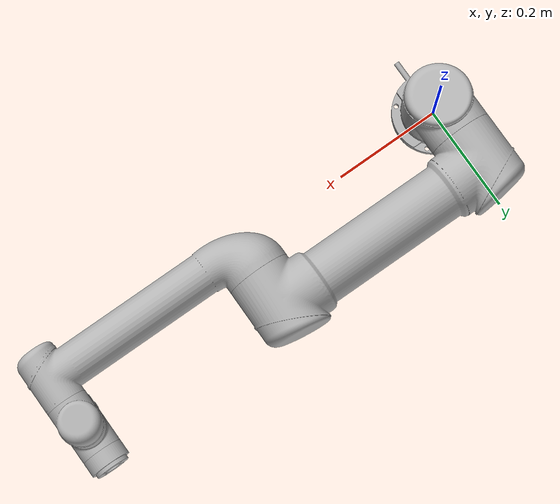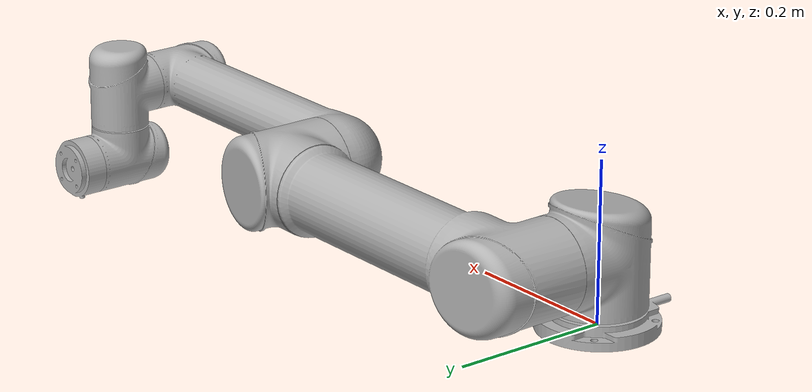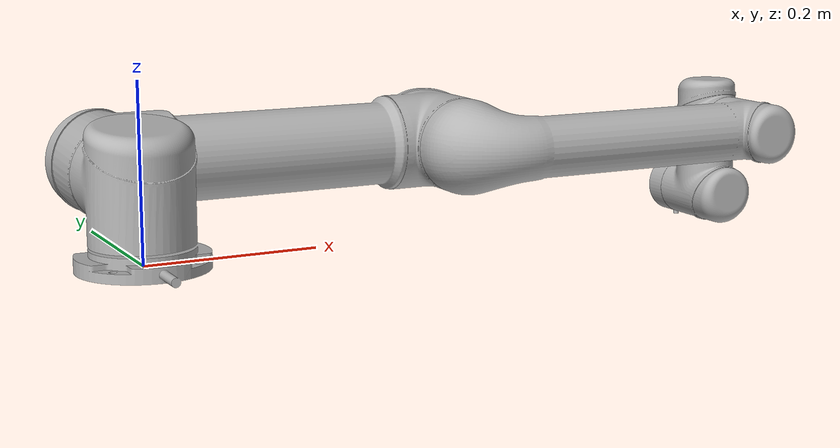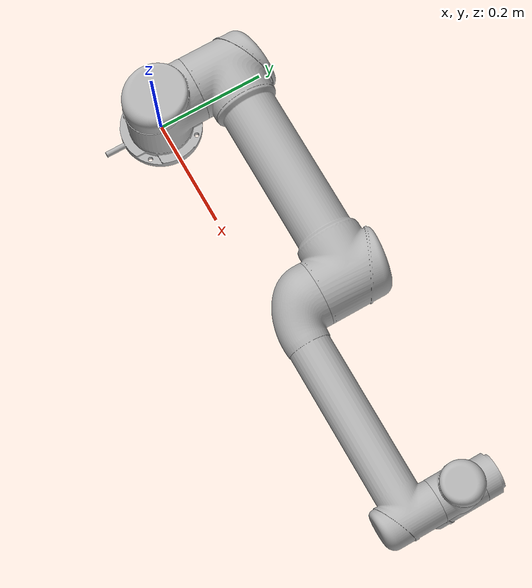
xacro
<?xml version="1.0"?>
<robot xmlns:xacro="http://ros.org/wiki/xacro"
       name="ur5" >

  <xacro:arg name="parent" default="world"/>
  <xacro:arg name="prefix" default=""/>
  <xacro:arg name="origin_xyz" default="0.0 0.0 0.0"/>
  <xacro:arg name="origin_rpy" default="0.0 0.0 0.0"/>

  <!-- common stuff -->
  <xacro:include filename="$(find ur_description)/urdf/common.gazebo.xacro" />

  <!-- ur5 -->
  <xacro:include filename="$(find ur_description)/urdf/ur5.urdf.xacro" />

  <!-- arm -->
  <xacro:ur5_robot prefix="$(arg prefix)" joint_limited="true"
    shoulder_pan_lower_limit="${-pi}" shoulder_pan_upper_limit="${pi}"
    shoulder_lift_lower_limit="${-pi}" shoulder_lift_upper_limit="${pi}"
    elbow_joint_lower_limit="${-pi}" elbow_joint_upper_limit="${pi}"
    wrist_1_lower_limit="${-pi}" wrist_1_upper_limit="${pi}"
    wrist_2_lower_limit="${-pi}" wrist_2_upper_limit="${pi}"
    wrist_3_lower_limit="${-pi}" wrist_3_upper_limit="${pi}"
  />

  <link name="$(arg parent)" />

  <joint name="$(arg parent)_joint" type="fixed">
    <parent link="$(arg parent)" />
    <child link ="$(arg prefix)base_link" />
    <origin xyz="$(arg origin_xyz)" rpy="$(arg origin_rpy)" />
  </joint>

</robot>

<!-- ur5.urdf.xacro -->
<robot xmlns:xacro="http://ros.org/wiki/xacro">

  <xacro:include filename="$(find ur_description)/urdf/ur.transmission.xacro" />
  <xacro:include filename="$(find ur_description)/urdf/ur.gazebo.xacro" />

  <!-- Inertia parameters -->
  <xacro:property name="ur5_base_mass" value="4.0" />  <!-- This mass might be incorrect -->
  <xacro:property name="ur5_shoulder_mass" value="3.7000" />
  <xacro:property name="ur5_upper_arm_mass" value="8.3930" />
  <xacro:property name="ur5_forearm_mass" value="2.2750" />
  <xacro:property name="ur5_wrist_1_mass" value="1.2190" />
  <xacro:property name="ur5_wrist_2_mass" value="1.2190" />
  <xacro:property name="ur5_wrist_3_mass" value="0.1879" />

  <xacro:property name="ur5_shoulder_cog" value="0.0 0.00193 -0.02561" />
  <xacro:property name="ur5_upper_arm_cog" value="0.0 -0.024201 0.2125" />
  <xacro:property name="ur5_forearm_cog" value="0.0 0.0265 0.11993" />
  <xacro:property name="ur5_wrist_1_cog" value="0.0 0.110949 0.01634" />
  <xacro:property name="ur5_wrist_2_cog" value="0.0 0.0018 0.11099" />
  <xacro:property name="ur5_wrist_3_cog" value="0.0 0.001159 0.0" />

  <!-- Kinematic model -->
  <!-- Properties from urcontrol.conf -->
  <xacro:property name="ur5_d1" value="0.089159" />
  <xacro:property name="ur5_a2" value="-0.42500" />
  <xacro:property name="ur5_a3" value="-0.39225" />
  <xacro:property name="ur5_d4" value="0.10915" />
  <xacro:property name="ur5_d5" value="0.09465" />
  <xacro:property name="ur5_d6" value="0.0823" />

  <!-- Arbitrary offsets for shoulder/elbow joints -->
  <xacro:property name="ur5_shoulder_offset" value="0.13585" />  <!-- measured from model -->
  <xacro:property name="ur5_elbow_offset" value="-0.1197" /> <!-- measured from model -->

  <!-- link lengths used in model -->
  <xacro:property name="ur5_shoulder_height" value="${ur5_d1}" />
  <xacro:property name="ur5_upper_arm_length" value="${-ur5_a2}" />
  <xacro:property name="ur5_forearm_length" value="${-ur5_a3}" />
  <xacro:property name="ur5_wrist_1_length" value="${ur5_d4 - ur5_elbow_offset - ur5_shoulder_offset}" />
  <xacro:property name="ur5_wrist_2_length" value="${ur5_d5}" />
  <xacro:property name="ur5_wrist_3_length" value="${ur5_d6}" />
  <!--property name="ur5_shoulder_height" value="0.089159" /-->
  <!--property name="ur5_shoulder_offset" value="0.13585" /-->  <!-- ur5_shoulder_offset - ur5_elbow_offset + ur5_wrist_1_length = 0.10915 -->
  <!--property name="ur5_upper_arm_length" value="0.42500" /-->
  <!--property name="ur5_elbow_offset" value="0.1197" /-->       <!-- CAD measured -->
  <!--property name="ur5_forearm_length" value="0.39225" /-->
  <!--property name="ur5_wrist_1_length" value="0.093" /-->     <!-- CAD measured -->
  <!--property name="ur5_wrist_2_length" value="0.09465" /-->   <!-- In CAD this distance is 0.930, but in the spec it is 0.09465 -->
  <!--property name="ur5_wrist_3_length" value="0.0823" /-->

  <xacro:property name="ur5_shoulder_radius" value="0.060" />   <!-- manually measured -->
  <xacro:property name="ur5_upper_arm_radius" value="0.054" />  <!-- manually measured -->
  <xacro:property name="ur5_elbow_radius" value="0.060" />      <!-- manually measured -->
  <xacro:property name="ur5_forearm_radius" value="0.040" />    <!-- manually measured -->
  <xacro:property name="ur5_wrist_radius" value="0.045" />      <!-- manually measured -->

  <xacro:macro name="cylinder_inertial" params="radius length mass *origin">
    <inertial>
      <mass value="${mass}" />
      <xacro:insert_block name="origin" />
      <inertia ixx="${0.0833333 * mass * (3 * radius * radius + length * length)}" ixy="0.0" ixz="0.0"
        iyy="${0.0833333 * mass * (3 * radius * radius + length * length)}" iyz="0.0"
        izz="${0.5 * mass * radius * radius}" />
    </inertial>
  </xacro:macro>

  <xacro:macro name="ur5_robot" params="prefix joint_limited
     shoulder_pan_lower_limit:=${-pi}    shoulder_pan_upper_limit:=${pi}
     shoulder_lift_lower_limit:=${-pi}    shoulder_lift_upper_limit:=${pi}
     elbow_joint_lower_limit:=${-pi}    elbow_joint_upper_limit:=${pi}
     wrist_1_lower_limit:=${-pi}    wrist_1_upper_limit:=${pi}
     wrist_2_lower_limit:=${-pi}    wrist_2_upper_limit:=${pi}
     wrist_3_lower_limit:=${-pi}    wrist_3_upper_limit:=${pi}
     transmission_hw_interface:=hardware_interface/PositionJointInterface">

    <link name="${prefix}base_link" >
      <visual>
        <geometry>
          <mesh filename="package://ur_description/meshes/ur5/visual/base.dae" />
        </geometry>
        <material name="LightGrey">
          <color rgba="0.7 0.7 0.7 1.0"/>
        </material>
      </visual>
      <collision>
        <geometry>
          <mesh filename="package://ur_description/meshes/ur5/collision/base.stl" />
        </geometry>
      </collision>
      <xacro:cylinder_inertial radius="0.06" length="0.05" mass="${ur5_base_mass}">
        <origin xyz="0.0 0.0 0.0" rpy="0 0 0" />
      </xacro:cylinder_inertial>
    </link>

    <joint name="${prefix}shoulder_pan_joint" type="revolute">
      <parent link="${prefix}base_link" />
      <child link = "${prefix}shoulder_link" />
      <origin xyz="0.0 0.0 ${ur5_shoulder_height}" rpy="0.0 0.0 0.0" />
      <axis xyz="0 0 1" />
      <xacro:unless value="${joint_limited}">
        <limit lower="${-2.0 * pi}" upper="${2.0 * pi}" effort="150.0" velocity="3.15"/>
      </xacro:unless>
      <xacro:if value="${joint_limited}">
        <limit lower="${shoulder_pan_lower_limit}" upper="${shoulder_pan_upper_limit}" effort="150.0" velocity="3.15"/>
      </xacro:if>
      <dynamics damping="0.0" friction="0.0"/>
    </joint>

    <link name="${prefix}shoulder_link">
      <visual>
        <geometry>
          <mesh filename="package://ur_description/meshes/ur5/visual/shoulder.dae" />
        </geometry>
        <material name="LightGrey">
          <color rgba="0.7 0.7 0.7 1.0"/>
        </material>
      </visual>
      <collision>
        <geometry>
          <mesh filename="package://ur_description/meshes/ur5/collision/shoulder.stl" />
        </geometry>
      </collision>
      <xacro:cylinder_inertial radius="0.06" length="0.15" mass="${ur5_shoulder_mass}">
        <origin xyz="0.0 0.0 0.0" rpy="0 0 0" />
      </xacro:cylinder_inertial>
    </link>

    <joint name="${prefix}shoulder_lift_joint" type="revolute">
      <parent link="${prefix}shoulder_link" />
      <child link = "${prefix}upper_arm_link" />
      <origin xyz="0.0 ${ur5_shoulder_offset} 0.0" rpy="0.0 ${pi / 2.0} 0.0" />
      <axis xyz="0 1 0" />
      <xacro:unless value="${joint_limited}">
        <limit lower="${-2.0 * pi}" upper="${2.0 * pi}" effort="150.0" velocity="3.15"/>
      </xacro:unless>
      <xacro:if value="${joint_limited}">
        <limit lower="${shoulder_lift_lower_limit}" upper="${shoulder_lift_upper_limit}" effort="150.0" velocity="3.15"/>
      </xacro:if>
      <dynamics damping="0.0" friction="0.0"/>
    </joint>

    <link name="${prefix}upper_arm_link">
      <visual>
        <geometry>
          <mesh filename="package://ur_description/meshes/ur5/visual/upperarm.dae" />
        </geometry>
        <material name="LightGrey">
          <color rgba="0.7 0.7 0.7 1.0"/>
        </material>
      </visual>
      <collision>
        <geometry>
          <mesh filename="package://ur_description/meshes/ur5/collision/upperarm.stl" />
        </geometry>
      </collision>
      <xacro:cylinder_inertial radius="0.06" length="0.56" mass="${ur5_upper_arm_mass}">
        <origin xyz="0.0 0.0 0.28" rpy="0 0 0" />
      </xacro:cylinder_inertial>
    </link>

    <joint name="${prefix}elbow_joint" type="revolute">
      <parent link="${prefix}upper_arm_link" />
      <child link = "${prefix}forearm_link" />
      <origin xyz="0.0 ${ur5_elbow_offset} ${ur5_upper_arm_length}" rpy="0.0 0.0 0.0" />
      <axis xyz="0 1 0" />
      <xacro:unless value="${joint_limited}">
        <limit lower="${-pi}" upper="${pi}" effort="150.0" velocity="3.15"/>
      </xacro:unless>
      <xacro:if value="${joint_limited}">
        <limit lower="${elbow_joint_lower_limit}" upper="${elbow_joint_upper_limit}" effort="150.0" velocity="3.15"/>
      </xacro:if>
      <dynamics damping="0.0" friction="0.0"/>
    </joint>

    <link name="${prefix}forearm_link">
      <visual>
        <geometry>
          <mesh filename="package://ur_description/meshes/ur5/visual/forearm.dae" />
        </geometry>
        <material name="LightGrey">
          <color rgba="0.7 0.7 0.7 1.0"/>
        </material>
      </visual>
      <collision>
        <geometry>
          <mesh filename="package://ur_description/meshes/ur5/collision/forearm.stl" />
        </geometry>
      </collision>
      <xacro:cylinder_inertial radius="0.06" length="0.5" mass="${ur5_forearm_mass}">
        <origin xyz="0.0 0.0 0.25" rpy="0 0 0" />
      </xacro:cylinder_inertial>
    </link>

    <joint name="${prefix}wrist_1_joint" type="revolute">
      <parent link="${prefix}forearm_link" />
      <child link = "${prefix}wrist_1_link" />
      <origin xyz="0.0 0.0 ${ur5_forearm_length}" rpy="0.0 ${pi / 2.0} 0.0" />
      <axis xyz="0 1 0" />
      <xacro:unless value="${joint_limited}">
        <limit lower="${-2.0 * pi}" upper="${2.0 * pi}" effort="28.0" velocity="3.2"/>
      </xacro:unless>
      <xacro:if value="${joint_limited}">
        <limit lower="${wrist_1_lower_limit}" upper="${wrist_1_upper_limit}" effort="28.0" velocity="3.2"/>
      </xacro:if>
      <dynamics damping="0.0" friction="0.0"/>
    </joint>

    <link name="${prefix}wrist_1_link">
      <visual>
        <geometry>
          <mesh filename="package://ur_description/meshes/ur5/visual/wrist1.dae" />
        </geometry>
        <material name="LightGrey">
          <color rgba="0.7 0.7 0.7 1.0"/>
        </material>
      </visual>
      <collision>
        <geometry>
          <mesh filename="package://ur_description/meshes/ur5/collision/wrist1.stl" />
        </geometry>
      </collision>
      <xacro:cylinder_inertial radius="0.6" length="0.12" mass="${ur5_wrist_1_mass}">
        <origin xyz="0.0 0.0 0.0" rpy="0 0 0" />
      </xacro:cylinder_inertial>
    </link>

    <joint name="${prefix}wrist_2_joint" type="revolute">
      <parent link="${prefix}wrist_1_link" />
      <child link = "${prefix}wrist_2_link" />
      <origin xyz="0.0 ${ur5_wrist_1_length} 0.0" rpy="0.0 0.0 0.0" />
      <axis xyz="0 0 1" />
      <xacro:unless value="${joint_limited}">
        <limit lower="${-2.0 * pi}" upper="${2.0 * pi}" effort="28.0" velocity="3.2"/>
      </xacro:unless>
      <xacro:if value="${joint_limited}">
        <limit lower="${wrist_2_lower_limit}" upper="${wrist_2_upper_limit}" effort="28.0" velocity="3.2"/>
      </xacro:if>
      <dynamics damping="0.0" friction="0.0"/>
    </joint>

    <link name="${prefix}wrist_2_link">
      <visual>
        <geometry>
          <mesh filename="package://ur_description/meshes/ur5/visual/wrist2.dae" />
        </geometry>
        <material name="LightGrey">
          <color rgba="0.7 0.7 0.7 1.0"/>
        </material>
      </visual>
      <collision>
        <geometry>
          <mesh filename="package://ur_description/meshes/ur5/collision/wrist2.stl" />
        </geometry>
      </collision>
      <xacro:cylinder_inertial radius="0.6" length="0.12" mass="${ur5_wrist_2_mass}">
        <origin xyz="0.0 0.0 0.0" rpy="0 0 0" />
      </xacro:cylinder_inertial>
    </link>

    <joint name="${prefix}wrist_3_joint" type="revolute">
      <parent link="${prefix}wrist_2_link" />
      <child link = "${prefix}wrist_3_link" />
      <origin xyz="0.0 0.0 ${ur5_wrist_2_length}" rpy="0.0 0.0 0.0" />
      <axis xyz="0 1 0" />
      <xacro:unless value="${joint_limited}">
        <limit lower="${-2.0 * pi}" upper="${2.0 * pi}" effort="28.0" velocity="3.2"/>
      </xacro:unless>
      <xacro:if value="${joint_limited}">
        <limit lower="${wrist_3_lower_limit}" upper="${wrist_3_upper_limit}" effort="28.0" velocity="3.2"/>
      </xacro:if>
      <dynamics damping="0.0" friction="0.0"/>
    </joint>

    <link name="${prefix}wrist_3_link">
      <visual>
        <geometry>
          <mesh filename="package://ur_description/meshes/ur5/visual/wrist3.dae" />
        </geometry>
        <material name="LightGrey">
          <color rgba="0.7 0.7 0.7 1.0"/>
        </material>
      </visual>
      <collision>
        <geometry>
          <mesh filename="package://ur_description/meshes/ur5/collision/wrist3.stl" />
        </geometry>
      </collision>
      <xacro:cylinder_inertial radius="0.6" length="0.12" mass="${ur5_wrist_3_mass}">
        <origin xyz="0.0 0.0 0.0" rpy="0 0 0" />
      </xacro:cylinder_inertial>
    </link>

    <joint name="${prefix}ee_fixed_joint" type="fixed">
      <parent link="${prefix}wrist_3_link" />
      <child link = "${prefix}ee_link" />
      <origin xyz="0.0 ${ur5_wrist_3_length} 0.0" rpy="0.0 0.0 ${pi/2.0}" />
    </joint>

    <link name="${prefix}ee_link">
      <collision>
        <geometry>
          <box size="0.01 0.01 0.01"/>
        </geometry>
        <origin rpy="0 0 0" xyz="-0.01 0 0"/>
      </collision>
    </link>

    <xacro:ur_arm_transmission prefix="${prefix}" hw_interface="${transmission_hw_interface}"/>
    <xacro:ur_arm_gazebo prefix="${prefix}" />

    <!-- ROS base_link to UR 'Base' Coordinates transform -->
    <link name="${prefix}base"/>
    <joint name="${prefix}base_link-base_fixed_joint" type="fixed">
      <!-- NOTE: this rotation is only needed as long as base_link itself is
                 not corrected wrt the real robot (ie: rotated over 180
                 degrees)
      -->
      <origin xyz="0 0 0" rpy="0 0 ${-pi}"/>
      <parent link="${prefix}base_link"/>
      <child link="${prefix}base"/>
    </joint>

    <!-- Frame coincident with all-zeros TCP on UR controller -->
    <link name="${prefix}tool0"/>
    <joint name="${prefix}wrist_3_link-tool0_fixed_joint" type="fixed">
      <origin xyz="0 ${ur5_wrist_3_length} 0" rpy="${pi/-2.0} 0 0"/>
      <parent link="${prefix}wrist_3_link"/>
      <child link="${prefix}tool0"/>
    </joint>

  </xacro:macro>
</robot>
